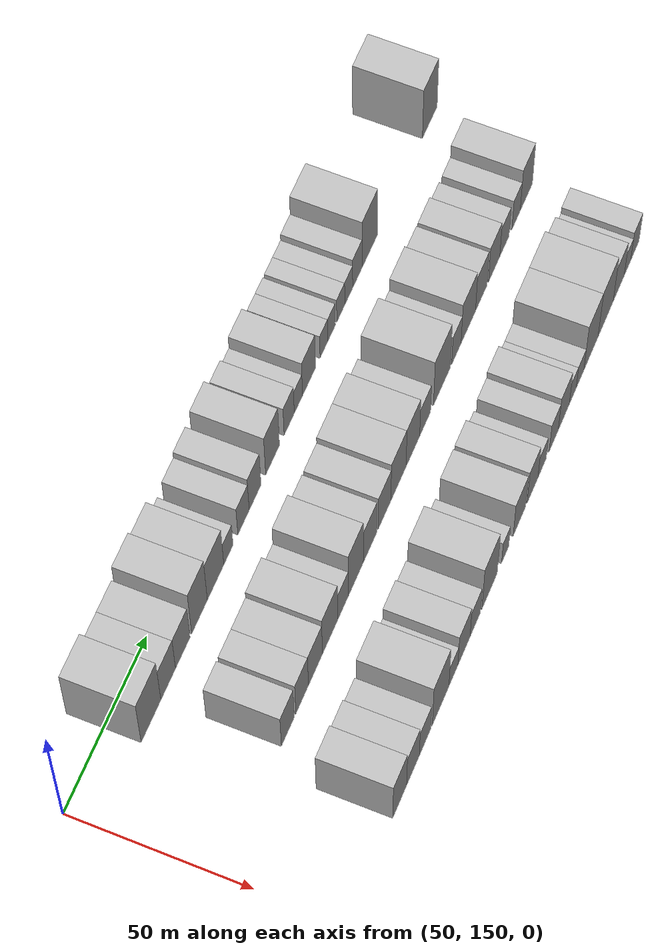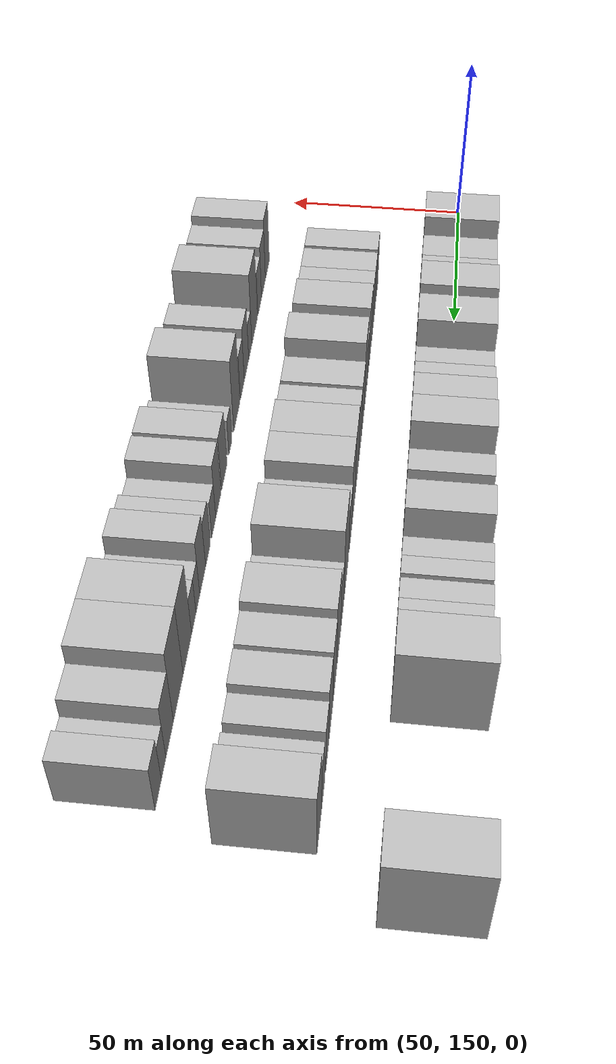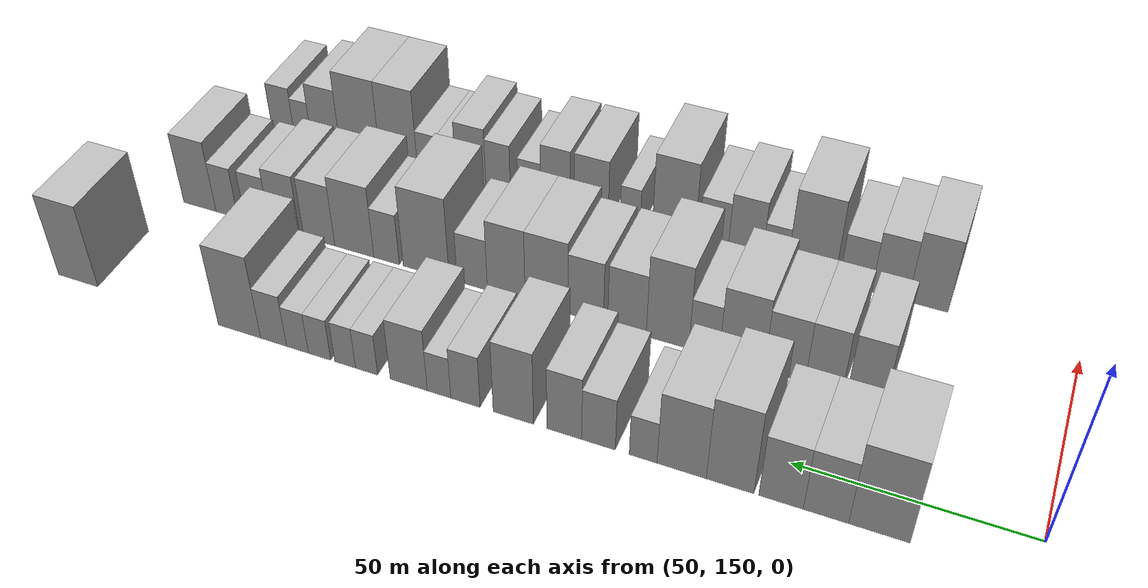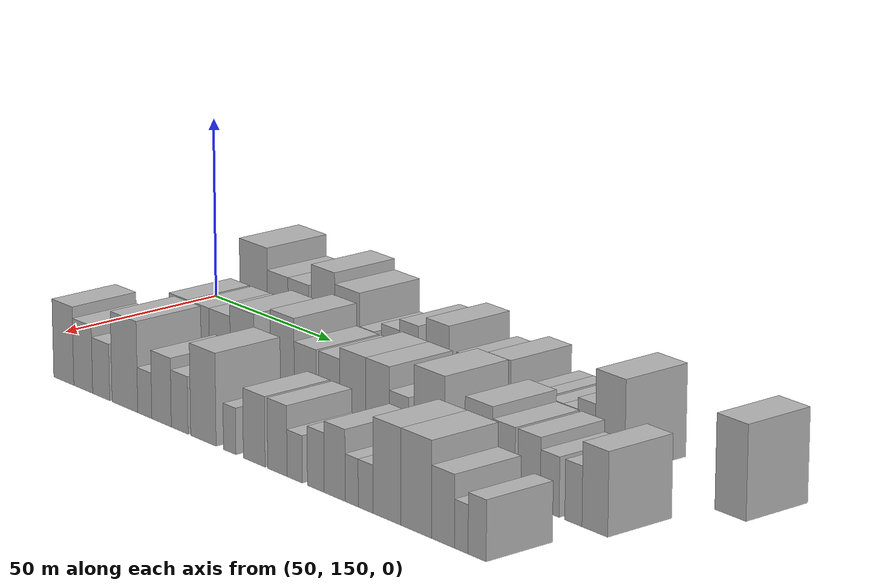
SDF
<sdf version="1.6">
 <world name="default">
  <model name="building_58">
   <static>1</static>
   <pose>50.0000 179.8685 0 0.000000 0.000000 0.000000</pose>
   <link name="link">
    <pose>0 0 12.00 0 0 0</pose>
    <collision name="collision"><geometry><box><size>20.0000 11.9621 24.0000</size></box></geometry></collision>
    <visual name="visual">
     <cast_shadows>0</cast_shadows>
     <geometry><box><size>20.0000 11.9621 24.0000</size></box></geometry>
     <material>
      <script>
       <uri>model://HANNAS_wall/materials/scripts</uri>
       <uri>model://HANNAS_wall/materials/textures</uri>
       <name>vrc/HANNAS_wall</name>
      </script>
     </material>
    </visual>
   </link>
  </model>
  <model name="building_59">
   <static>1</static>
   <pose>50.0000 190.3295 0 0.000000 0.000000 0.000000</pose>
   <link name="link">
    <pose>0 0 9.00 0 0 0</pose>
    <collision name="collision"><geometry><box><size>20.0000 8.9600 18.0000</size></box></geometry></collision>
    <visual name="visual">
     <cast_shadows>0</cast_shadows>
     <geometry><box><size>20.0000 8.9600 18.0000</size></box></geometry>
     <material>
      <script>
       <uri>model://HANNAS_wall/materials/scripts</uri>
       <uri>model://HANNAS_wall/materials/textures</uri>
       <name>vrc/HANNAS_wall</name>
      </script>
     </material>
    </visual>
   </link>
  </model>
  <model name="building_60">
   <static>1</static>
   <pose>50.0000 199.2914 0 0.000000 0.000000 0.000000</pose>
   <link name="link">
    <pose>0 0 9.00 0 0 0</pose>
    <collision name="collision"><geometry><box><size>20.0000 8.9637 18.0000</size></box></geometry></collision>
    <visual name="visual">
     <cast_shadows>0</cast_shadows>
     <geometry><box><size>20.0000 8.9637 18.0000</size></box></geometry>
     <material>
      <script>
       <uri>model://HANNAS_wall/materials/scripts</uri>
       <uri>model://HANNAS_wall/materials/textures</uri>
       <name>vrc/HANNAS_wall</name>
      </script>
     </material>
    </visual>
   </link>
  </model>
  <model name="building_61">
   <static>1</static>
   <pose>50.0000 209.6591 0 0.000000 0.000000 0.000000</pose>
   <link name="link">
    <pose>0 0 12.00 0 0 0</pose>
    <collision name="collision"><geometry><box><size>20.0000 9.7716 24.0000</size></box></geometry></collision>
    <visual name="visual">
     <cast_shadows>0</cast_shadows>
     <geometry><box><size>20.0000 9.7716 24.0000</size></box></geometry>
     <material>
      <script>
       <uri>model://HANNAS_wall/materials/scripts</uri>
       <uri>model://HANNAS_wall/materials/textures</uri>
       <name>vrc/HANNAS_wall</name>
      </script>
     </material>
    </visual>
   </link>
  </model>
  <model name="building_62">
   <static>1</static>
   <pose>50.0000 219.7192 0 0.000000 0.000000 0.000000</pose>
   <link name="link">
    <pose>0 0 10.50 0 0 0</pose>
    <collision name="collision"><geometry><box><size>20.0000 10.3487 21.0000</size></box></geometry></collision>
    <visual name="visual">
     <cast_shadows>0</cast_shadows>
     <geometry><box><size>20.0000 10.3487 21.0000</size></box></geometry>
     <material>
      <script>
       <uri>model://HANNAS_wall/materials/scripts</uri>
       <uri>model://HANNAS_wall/materials/textures</uri>
       <name>vrc/HANNAS_wall</name>
      </script>
     </material>
    </visual>
   </link>
  </model>
  <model name="building_63">
   <static>1</static>
   <pose>50.0000 227.8429 0 0.000000 0.000000 0.000000</pose>
   <link name="link">
    <pose>0 0 6.00 0 0 0</pose>
    <collision name="collision"><geometry><box><size>20.0000 5.8988 12.0000</size></box></geometry></collision>
    <visual name="visual">
     <cast_shadows>0</cast_shadows>
     <geometry><box><size>20.0000 5.8988 12.0000</size></box></geometry>
     <material>
      <script>
       <uri>model://HANNAS_wall/materials/scripts</uri>
       <uri>model://HANNAS_wall/materials/textures</uri>
       <name>vrc/HANNAS_wall</name>
      </script>
     </material>
    </visual>
   </link>
  </model>
  <model name="building_64">
   <static>1</static>
   <pose>50.0000 237.4357 0 0.000000 0.000000 0.000000</pose>
   <link name="link">
    <pose>0 0 7.50 0 0 0</pose>
    <collision name="collision"><geometry><box><size>20.0000 7.2868 15.0000</size></box></geometry></collision>
    <visual name="visual">
     <cast_shadows>0</cast_shadows>
     <geometry><box><size>20.0000 7.2868 15.0000</size></box></geometry>
     <material>
      <script>
       <uri>model://HANNAS_wall/materials/scripts</uri>
       <uri>model://HANNAS_wall/materials/textures</uri>
       <name>vrc/HANNAS_wall</name>
      </script>
     </material>
    </visual>
   </link>
  </model>
  <model name="building_65">
   <static>1</static>
   <pose>50.0000 244.8935 0 0.000000 0.000000 0.000000</pose>
   <link name="link">
    <pose>0 0 9.00 0 0 0</pose>
    <collision name="collision"><geometry><box><size>20.0000 7.6288 18.0000</size></box></geometry></collision>
    <visual name="visual">
     <cast_shadows>0</cast_shadows>
     <geometry><box><size>20.0000 7.6288 18.0000</size></box></geometry>
     <material>
      <script>
       <uri>model://HANNAS_wall/materials/scripts</uri>
       <uri>model://HANNAS_wall/materials/textures</uri>
       <name>vrc/HANNAS_wall</name>
      </script>
     </material>
    </visual>
   </link>
  </model>
  <model name="building_66">
   <static>1</static>
   <pose>50.0000 256.2161 0 0.000000 0.000000 0.000000</pose>
   <link name="link">
    <pose>0 0 10.50 0 0 0</pose>
    <collision name="collision"><geometry><box><size>20.0000 9.0163 21.0000</size></box></geometry></collision>
    <visual name="visual">
     <cast_shadows>0</cast_shadows>
     <geometry><box><size>20.0000 9.0163 21.0000</size></box></geometry>
     <material>
      <script>
       <uri>model://HANNAS_wall/materials/scripts</uri>
       <uri>model://HANNAS_wall/materials/textures</uri>
       <name>vrc/HANNAS_wall</name>
      </script>
     </material>
    </visual>
   </link>
  </model>
  <model name="building_67">
   <static>1</static>
   <pose>50.0000 267.0720 0 0.000000 0.000000 0.000000</pose>
   <link name="link">
    <pose>0 0 7.50 0 0 0</pose>
    <collision name="collision"><geometry><box><size>20.0000 6.6955 15.0000</size></box></geometry></collision>
    <visual name="visual">
     <cast_shadows>0</cast_shadows>
     <geometry><box><size>20.0000 6.6955 15.0000</size></box></geometry>
     <material>
      <script>
       <uri>model://HANNAS_wall/materials/scripts</uri>
       <uri>model://HANNAS_wall/materials/textures</uri>
       <name>vrc/HANNAS_wall</name>
      </script>
     </material>
    </visual>
   </link>
  </model>
  <model name="building_68">
   <static>1</static>
   <pose>50.0000 273.1495 0 0.000000 0.000000 0.000000</pose>
   <link name="link">
    <pose>0 0 6.00 0 0 0</pose>
    <collision name="collision"><geometry><box><size>20.0000 5.4594 12.0000</size></box></geometry></collision>
    <visual name="visual">
     <cast_shadows>0</cast_shadows>
     <geometry><box><size>20.0000 5.4594 12.0000</size></box></geometry>
     <material>
      <script>
       <uri>model://HANNAS_wall/materials/scripts</uri>
       <uri>model://HANNAS_wall/materials/textures</uri>
       <name>vrc/HANNAS_wall</name>
      </script>
     </material>
    </visual>
   </link>
  </model>
  <model name="building_69">
   <static>1</static>
   <pose>50.0000 280.2199 0 0.000000 0.000000 0.000000</pose>
   <link name="link">
    <pose>0 0 9.00 0 0 0</pose>
    <collision name="collision"><geometry><box><size>20.0000 8.6815 18.0000</size></box></geometry></collision>
    <visual name="visual">
     <cast_shadows>0</cast_shadows>
     <geometry><box><size>20.0000 8.6815 18.0000</size></box></geometry>
     <material>
      <script>
       <uri>model://HANNAS_wall/materials/scripts</uri>
       <uri>model://HANNAS_wall/materials/textures</uri>
       <name>vrc/HANNAS_wall</name>
      </script>
     </material>
    </visual>
   </link>
  </model>
  <model name="building_70">
   <static>1</static>
   <pose>50.0000 290.2087 0 0.000000 0.000000 0.000000</pose>
   <link name="link">
    <pose>0 0 6.00 0 0 0</pose>
    <collision name="collision"><geometry><box><size>20.0000 5.2961 12.0000</size></box></geometry></collision>
    <visual name="visual">
     <cast_shadows>0</cast_shadows>
     <geometry><box><size>20.0000 5.2961 12.0000</size></box></geometry>
     <material>
      <script>
       <uri>model://HANNAS_wall/materials/scripts</uri>
       <uri>model://HANNAS_wall/materials/textures</uri>
       <name>vrc/HANNAS_wall</name>
      </script>
     </material>
    </visual>
   </link>
  </model>
  <model name="building_71">
   <static>1</static>
   <pose>50.0000 295.3482 0 0.000000 0.000000 0.000000</pose>
   <link name="link">
    <pose>0 0 6.00 0 0 0</pose>
    <collision name="collision"><geometry><box><size>20.0000 4.9829 12.0000</size></box></geometry></collision>
    <visual name="visual">
     <cast_shadows>0</cast_shadows>
     <geometry><box><size>20.0000 4.9829 12.0000</size></box></geometry>
     <material>
      <script>
       <uri>model://HANNAS_wall/materials/scripts</uri>
       <uri>model://HANNAS_wall/materials/textures</uri>
       <name>vrc/HANNAS_wall</name>
      </script>
     </material>
    </visual>
   </link>
  </model>
  <model name="building_72">
   <static>1</static>
   <pose>50.0000 301.5589 0 0.000000 0.000000 0.000000</pose>
   <link name="link">
    <pose>0 0 6.00 0 0 0</pose>
    <collision name="collision"><geometry><box><size>20.0000 5.4385 12.0000</size></box></geometry></collision>
    <visual name="visual">
     <cast_shadows>0</cast_shadows>
     <geometry><box><size>20.0000 5.4385 12.0000</size></box></geometry>
     <material>
      <script>
       <uri>model://HANNAS_wall/materials/scripts</uri>
       <uri>model://HANNAS_wall/materials/textures</uri>
       <name>vrc/HANNAS_wall</name>
      </script>
     </material>
    </visual>
   </link>
  </model>
  <model name="building_73">
   <static>1</static>
   <pose>50.0000 306.9627 0 0.000000 0.000000 0.000000</pose>
   <link name="link">
    <pose>0 0 6.00 0 0 0</pose>
    <collision name="collision"><geometry><box><size>20.0000 5.3692 12.0000</size></box></geometry></collision>
    <visual name="visual">
     <cast_shadows>0</cast_shadows>
     <geometry><box><size>20.0000 5.3692 12.0000</size></box></geometry>
     <material>
      <script>
       <uri>model://HANNAS_wall/materials/scripts</uri>
       <uri>model://HANNAS_wall/materials/textures</uri>
       <name>vrc/HANNAS_wall</name>
      </script>
     </material>
    </visual>
   </link>
  </model>
  <model name="building_74">
   <static>1</static>
   <pose>50.0000 312.8742 0 0.000000 0.000000 0.000000</pose>
   <link name="link">
    <pose>0 0 7.50 0 0 0</pose>
    <collision name="collision"><geometry><box><size>20.0000 6.4538 15.0000</size></box></geometry></collision>
    <visual name="visual">
     <cast_shadows>0</cast_shadows>
     <geometry><box><size>20.0000 6.4538 15.0000</size></box></geometry>
     <material>
      <script>
       <uri>model://HANNAS_wall/materials/scripts</uri>
       <uri>model://HANNAS_wall/materials/textures</uri>
       <name>vrc/HANNAS_wall</name>
      </script>
     </material>
    </visual>
   </link>
  </model>
  <model name="building_75">
   <static>1</static>
   <pose>50.0000 321.4461 0 0.000000 0.000000 0.000000</pose>
   <link name="link">
    <pose>0 0 12.00 0 0 0</pose>
    <collision name="collision"><geometry><box><size>20.0000 10.6899 24.0000</size></box></geometry></collision>
    <visual name="visual">
     <cast_shadows>0</cast_shadows>
     <geometry><box><size>20.0000 10.6899 24.0000</size></box></geometry>
     <material>
      <script>
       <uri>model://HANNAS_wall/materials/scripts</uri>
       <uri>model://HANNAS_wall/materials/textures</uri>
       <name>vrc/HANNAS_wall</name>
      </script>
     </material>
    </visual>
   </link>
  </model>
  <model name="building_76">
   <static>1</static>
   <pose>50.0000 363.7140 0 0.000000 0.000000 0.000000</pose>
   <link name="link">
    <pose>0 0 12.00 0 0 0</pose>
    <collision name="collision"><geometry><box><size>20.0000 10.6154 24.0000</size></box></geometry></collision>
    <visual name="visual">
     <cast_shadows>0</cast_shadows>
     <geometry><box><size>20.0000 10.6154 24.0000</size></box></geometry>
     <material>
      <script>
       <uri>model://HANNAS_wall/materials/scripts</uri>
       <uri>model://HANNAS_wall/materials/textures</uri>
       <name>vrc/HANNAS_wall</name>
      </script>
     </material>
    </visual>
   </link>
  </model>
  <model name="building_136">
   <static>1</static>
   <pose>82.0000 189.9495 0 0.000000 0.000000 0.000000</pose>
   <link name="link">
    <pose>0 0 9.00 0 0 0</pose>
    <collision name="collision"><geometry><box><size>20.0000 8.1042 18.0000</size></box></geometry></collision>
    <visual name="visual">
     <cast_shadows>0</cast_shadows>
     <geometry><box><size>20.0000 8.1042 18.0000</size></box></geometry>
     <material>
      <script>
       <uri>model://HANNAS_wall/materials/scripts</uri>
       <uri>model://HANNAS_wall/materials/textures</uri>
       <name>vrc/HANNAS_wall</name>
      </script>
     </material>
    </visual>
   </link>
  </model>
  <model name="building_137">
   <static>1</static>
   <pose>82.0000 199.0124 0 0.000000 0.000000 0.000000</pose>
   <link name="link">
    <pose>0 0 9.00 0 0 0</pose>
    <collision name="collision"><geometry><box><size>20.0000 8.0217 18.0000</size></box></geometry></collision>
    <visual name="visual">
     <cast_shadows>0</cast_shadows>
     <geometry><box><size>20.0000 8.0217 18.0000</size></box></geometry>
     <material>
      <script>
       <uri>model://HANNAS_wall/materials/scripts</uri>
       <uri>model://HANNAS_wall/materials/textures</uri>
       <name>vrc/HANNAS_wall</name>
      </script>
     </material>
    </visual>
   </link>
  </model>
  <model name="building_138">
   <static>1</static>
   <pose>82.0000 207.5011 0 0.000000 0.000000 0.000000</pose>
   <link name="link">
    <pose>0 0 9.00 0 0 0</pose>
    <collision name="collision"><geometry><box><size>20.0000 8.9556 18.0000</size></box></geometry></collision>
    <visual name="visual">
     <cast_shadows>0</cast_shadows>
     <geometry><box><size>20.0000 8.9556 18.0000</size></box></geometry>
     <material>
      <script>
       <uri>model://HANNAS_wall/materials/scripts</uri>
       <uri>model://HANNAS_wall/materials/textures</uri>
       <name>vrc/HANNAS_wall</name>
      </script>
     </material>
    </visual>
   </link>
  </model>
  <model name="building_139">
   <static>1</static>
   <pose>82.0000 216.9906 0 0.000000 0.000000 0.000000</pose>
   <link name="link">
    <pose>0 0 10.50 0 0 0</pose>
    <collision name="collision"><geometry><box><size>20.0000 10.0235 21.0000</size></box></geometry></collision>
    <visual name="visual">
     <cast_shadows>0</cast_shadows>
     <geometry><box><size>20.0000 10.0235 21.0000</size></box></geometry>
     <material>
      <script>
       <uri>model://HANNAS_wall/materials/scripts</uri>
       <uri>model://HANNAS_wall/materials/textures</uri>
       <name>vrc/HANNAS_wall</name>
      </script>
     </material>
    </visual>
   </link>
  </model>
  <model name="building_140">
   <static>1</static>
   <pose>82.0000 225.4084 0 0.000000 0.000000 0.000000</pose>
   <link name="link">
    <pose>0 0 7.50 0 0 0</pose>
    <collision name="collision"><geometry><box><size>20.0000 6.8121 15.0000</size></box></geometry></collision>
    <visual name="visual">
     <cast_shadows>0</cast_shadows>
     <geometry><box><size>20.0000 6.8121 15.0000</size></box></geometry>
     <material>
      <script>
       <uri>model://HANNAS_wall/materials/scripts</uri>
       <uri>model://HANNAS_wall/materials/textures</uri>
       <name>vrc/HANNAS_wall</name>
      </script>
     </material>
    </visual>
   </link>
  </model>
  <model name="building_141">
   <static>1</static>
   <pose>82.0000 233.7053 0 0.000000 0.000000 0.000000</pose>
   <link name="link">
    <pose>0 0 12.00 0 0 0</pose>
    <collision name="collision"><geometry><box><size>20.0000 9.7816 24.0000</size></box></geometry></collision>
    <visual name="visual">
     <cast_shadows>0</cast_shadows>
     <geometry><box><size>20.0000 9.7816 24.0000</size></box></geometry>
     <material>
      <script>
       <uri>model://HANNAS_wall/materials/scripts</uri>
       <uri>model://HANNAS_wall/materials/textures</uri>
       <name>vrc/HANNAS_wall</name>
      </script>
     </material>
    </visual>
   </link>
  </model>
  <model name="building_142">
   <static>1</static>
   <pose>82.0000 243.0735 0 0.000000 0.000000 0.000000</pose>
   <link name="link">
    <pose>0 0 9.00 0 0 0</pose>
    <collision name="collision"><geometry><box><size>20.0000 8.9549 18.0000</size></box></geometry></collision>
    <visual name="visual">
     <cast_shadows>0</cast_shadows>
     <geometry><box><size>20.0000 8.9549 18.0000</size></box></geometry>
     <material>
      <script>
       <uri>model://HANNAS_wall/materials/scripts</uri>
       <uri>model://HANNAS_wall/materials/textures</uri>
       <name>vrc/HANNAS_wall</name>
      </script>
     </material>
    </visual>
   </link>
  </model>
  <model name="building_143">
   <static>1</static>
   <pose>82.0000 252.7637 0 0.000000 0.000000 0.000000</pose>
   <link name="link">
    <pose>0 0 9.00 0 0 0</pose>
    <collision name="collision"><geometry><box><size>20.0000 8.4254 18.0000</size></box></geometry></collision>
    <visual name="visual">
     <cast_shadows>0</cast_shadows>
     <geometry><box><size>20.0000 8.4254 18.0000</size></box></geometry>
     <material>
      <script>
       <uri>model://HANNAS_wall/materials/scripts</uri>
       <uri>model://HANNAS_wall/materials/textures</uri>
       <name>vrc/HANNAS_wall</name>
      </script>
     </material>
    </visual>
   </link>
  </model>
  <model name="building_144">
   <static>1</static>
   <pose>82.0000 262.0958 0 0.000000 0.000000 0.000000</pose>
   <link name="link">
    <pose>0 0 10.50 0 0 0</pose>
    <collision name="collision"><geometry><box><size>20.0000 10.2388 21.0000</size></box></geometry></collision>
    <visual name="visual">
     <cast_shadows>0</cast_shadows>
     <geometry><box><size>20.0000 10.2388 21.0000</size></box></geometry>
     <material>
      <script>
       <uri>model://HANNAS_wall/materials/scripts</uri>
       <uri>model://HANNAS_wall/materials/textures</uri>
       <name>vrc/HANNAS_wall</name>
      </script>
     </material>
    </visual>
   </link>
  </model>
  <model name="building_145">
   <static>1</static>
   <pose>82.0000 271.8441 0 0.000000 0.000000 0.000000</pose>
   <link name="link">
    <pose>0 0 10.50 0 0 0</pose>
    <collision name="collision"><geometry><box><size>20.0000 9.2577 21.0000</size></box></geometry></collision>
    <visual name="visual">
     <cast_shadows>0</cast_shadows>
     <geometry><box><size>20.0000 9.2577 21.0000</size></box></geometry>
     <material>
      <script>
       <uri>model://HANNAS_wall/materials/scripts</uri>
       <uri>model://HANNAS_wall/materials/textures</uri>
       <name>vrc/HANNAS_wall</name>
      </script>
     </material>
    </visual>
   </link>
  </model>
  <model name="building_146">
   <static>1</static>
   <pose>82.0000 280.2176 0 0.000000 0.000000 0.000000</pose>
   <link name="link">
    <pose>0 0 7.50 0 0 0</pose>
    <collision name="collision"><geometry><box><size>20.0000 7.4893 15.0000</size></box></geometry></collision>
    <visual name="visual">
     <cast_shadows>0</cast_shadows>
     <geometry><box><size>20.0000 7.4893 15.0000</size></box></geometry>
     <material>
      <script>
       <uri>model://HANNAS_wall/materials/scripts</uri>
       <uri>model://HANNAS_wall/materials/textures</uri>
       <name>vrc/HANNAS_wall</name>
      </script>
     </material>
    </visual>
   </link>
  </model>
  <model name="building_147">
   <static>1</static>
   <pose>82.0000 291.7749 0 0.000000 0.000000 0.000000</pose>
   <link name="link">
    <pose>0 0 12.00 0 0 0</pose>
    <collision name="collision"><geometry><box><size>20.0000 11.6252 24.0000</size></box></geometry></collision>
    <visual name="visual">
     <cast_shadows>0</cast_shadows>
     <geometry><box><size>20.0000 11.6252 24.0000</size></box></geometry>
     <material>
      <script>
       <uri>model://HANNAS_wall/materials/scripts</uri>
       <uri>model://HANNAS_wall/materials/textures</uri>
       <name>vrc/HANNAS_wall</name>
      </script>
     </material>
    </visual>
   </link>
  </model>
  <model name="building_148">
   <static>1</static>
   <pose>82.0000 301.8624 0 0.000000 0.000000 0.000000</pose>
   <link name="link">
    <pose>0 0 7.50 0 0 0</pose>
    <collision name="collision"><geometry><box><size>20.0000 6.5497 15.0000</size></box></geometry></collision>
    <visual name="visual">
     <cast_shadows>0</cast_shadows>
     <geometry><box><size>20.0000 6.5497 15.0000</size></box></geometry>
     <material>
      <script>
       <uri>model://HANNAS_wall/materials/scripts</uri>
       <uri>model://HANNAS_wall/materials/textures</uri>
       <name>vrc/HANNAS_wall</name>
      </script>
     </material>
    </visual>
   </link>
  </model>
  <model name="building_149">
   <static>1</static>
   <pose>82.0000 310.2356 0 0.000000 0.000000 0.000000</pose>
   <link name="link">
    <pose>0 0 10.50 0 0 0</pose>
    <collision name="collision"><geometry><box><size>20.0000 10.1968 21.0000</size></box></geometry></collision>
    <visual name="visual">
     <cast_shadows>0</cast_shadows>
     <geometry><box><size>20.0000 10.1968 21.0000</size></box></geometry>
     <material>
      <script>
       <uri>model://HANNAS_wall/materials/scripts</uri>
       <uri>model://HANNAS_wall/materials/textures</uri>
       <name>vrc/HANNAS_wall</name>
      </script>
     </material>
    </visual>
   </link>
  </model>
  <model name="building_150">
   <static>1</static>
   <pose>82.0000 319.4505 0 0.000000 0.000000 0.000000</pose>
   <link name="link">
    <pose>0 0 9.00 0 0 0</pose>
    <collision name="collision"><geometry><box><size>20.0000 8.2329 18.0000</size></box></geometry></collision>
    <visual name="visual">
     <cast_shadows>0</cast_shadows>
     <geometry><box><size>20.0000 8.2329 18.0000</size></box></geometry>
     <material>
      <script>
       <uri>model://HANNAS_wall/materials/scripts</uri>
       <uri>model://HANNAS_wall/materials/textures</uri>
       <name>vrc/HANNAS_wall</name>
      </script>
     </material>
    </visual>
   </link>
  </model>
  <model name="building_151">
   <static>1</static>
   <pose>82.0000 328.6269 0 0.000000 0.000000 0.000000</pose>
   <link name="link">
    <pose>0 0 9.00 0 0 0</pose>
    <collision name="collision"><geometry><box><size>20.0000 8.1199 18.0000</size></box></geometry></collision>
    <visual name="visual">
     <cast_shadows>0</cast_shadows>
     <geometry><box><size>20.0000 8.1199 18.0000</size></box></geometry>
     <material>
      <script>
       <uri>model://HANNAS_wall/materials/scripts</uri>
       <uri>model://HANNAS_wall/materials/textures</uri>
       <name>vrc/HANNAS_wall</name>
      </script>
     </material>
    </visual>
   </link>
  </model>
  <model name="building_152">
   <static>1</static>
   <pose>82.0000 336.0579 0 0.000000 0.000000 0.000000</pose>
   <link name="link">
    <pose>0 0 7.50 0 0 0</pose>
    <collision name="collision"><geometry><box><size>20.0000 6.7422 15.0000</size></box></geometry></collision>
    <visual name="visual">
     <cast_shadows>0</cast_shadows>
     <geometry><box><size>20.0000 6.7422 15.0000</size></box></geometry>
     <material>
      <script>
       <uri>model://HANNAS_wall/materials/scripts</uri>
       <uri>model://HANNAS_wall/materials/textures</uri>
       <name>vrc/HANNAS_wall</name>
      </script>
     </material>
    </visual>
   </link>
  </model>
  <model name="building_153">
   <static>1</static>
   <pose>82.0000 344.4405 0 0.000000 0.000000 0.000000</pose>
   <link name="link">
    <pose>0 0 7.50 0 0 0</pose>
    <collision name="collision"><geometry><box><size>20.0000 6.0230 15.0000</size></box></geometry></collision>
    <visual name="visual">
     <cast_shadows>0</cast_shadows>
     <geometry><box><size>20.0000 6.0230 15.0000</size></box></geometry>
     <material>
      <script>
       <uri>model://HANNAS_wall/materials/scripts</uri>
       <uri>model://HANNAS_wall/materials/textures</uri>
       <name>vrc/HANNAS_wall</name>
      </script>
     </material>
    </visual>
   </link>
  </model>
  <model name="building_154">
   <static>1</static>
   <pose>82.0000 351.9425 0 0.000000 0.000000 0.000000</pose>
   <link name="link">
    <pose>0 0 10.50 0 0 0</pose>
    <collision name="collision"><geometry><box><size>20.0000 8.9811 21.0000</size></box></geometry></collision>
    <visual name="visual">
     <cast_shadows>0</cast_shadows>
     <geometry><box><size>20.0000 8.9811 21.0000</size></box></geometry>
     <material>
      <script>
       <uri>model://HANNAS_wall/materials/scripts</uri>
       <uri>model://HANNAS_wall/materials/textures</uri>
       <name>vrc/HANNAS_wall</name>
      </script>
     </material>
    </visual>
   </link>
  </model>
  <model name="building_214">
   <static>1</static>
   <pose>114.0000 183.4968 0 0.000000 0.000000 0.000000</pose>
   <link name="link">
    <pose>0 0 10.50 0 0 0</pose>
    <collision name="collision"><geometry><box><size>20.0000 8.9172 21.0000</size></box></geometry></collision>
    <visual name="visual">
     <cast_shadows>0</cast_shadows>
     <geometry><box><size>20.0000 8.9172 21.0000</size></box></geometry>
     <material>
      <script>
       <uri>model://HANNAS_wall/materials/scripts</uri>
       <uri>model://HANNAS_wall/materials/textures</uri>
       <name>vrc/HANNAS_wall</name>
      </script>
     </material>
    </visual>
   </link>
  </model>
  <model name="building_215">
   <static>1</static>
   <pose>114.0000 192.1041 0 0.000000 0.000000 0.000000</pose>
   <link name="link">
    <pose>0 0 9.00 0 0 0</pose>
    <collision name="collision"><geometry><box><size>20.0000 8.2974 18.0000</size></box></geometry></collision>
    <visual name="visual">
     <cast_shadows>0</cast_shadows>
     <geometry><box><size>20.0000 8.2974 18.0000</size></box></geometry>
     <material>
      <script>
       <uri>model://HANNAS_wall/materials/scripts</uri>
       <uri>model://HANNAS_wall/materials/textures</uri>
       <name>vrc/HANNAS_wall</name>
      </script>
     </material>
    </visual>
   </link>
  </model>
  <model name="building_216">
   <static>1</static>
   <pose>114.0000 199.9936 0 0.000000 0.000000 0.000000</pose>
   <link name="link">
    <pose>0 0 7.50 0 0 0</pose>
    <collision name="collision"><geometry><box><size>20.0000 7.4818 15.0000</size></box></geometry></collision>
    <visual name="visual">
     <cast_shadows>0</cast_shadows>
     <geometry><box><size>20.0000 7.4818 15.0000</size></box></geometry>
     <material>
      <script>
       <uri>model://HANNAS_wall/materials/scripts</uri>
       <uri>model://HANNAS_wall/materials/textures</uri>
       <name>vrc/HANNAS_wall</name>
      </script>
     </material>
    </visual>
   </link>
  </model>
  <model name="building_217">
   <static>1</static>
   <pose>114.0000 210.2603 0 0.000000 0.000000 0.000000</pose>
   <link name="link">
    <pose>0 0 12.00 0 0 0</pose>
    <collision name="collision"><geometry><box><size>20.0000 11.0515 24.0000</size></box></geometry></collision>
    <visual name="visual">
     <cast_shadows>0</cast_shadows>
     <geometry><box><size>20.0000 11.0515 24.0000</size></box></geometry>
     <material>
      <script>
       <uri>model://HANNAS_wall/materials/scripts</uri>
       <uri>model://HANNAS_wall/materials/textures</uri>
       <name>vrc/HANNAS_wall</name>
      </script>
     </material>
    </visual>
   </link>
  </model>
  <model name="building_218">
   <static>1</static>
   <pose>114.0000 218.7737 0 0.000000 0.000000 0.000000</pose>
   <link name="link">
    <pose>0 0 6.00 0 0 0</pose>
    <collision name="collision"><geometry><box><size>20.0000 5.9752 12.0000</size></box></geometry></collision>
    <visual name="visual">
     <cast_shadows>0</cast_shadows>
     <geometry><box><size>20.0000 5.9752 12.0000</size></box></geometry>
     <material>
      <script>
       <uri>model://HANNAS_wall/materials/scripts</uri>
       <uri>model://HANNAS_wall/materials/textures</uri>
       <name>vrc/HANNAS_wall</name>
      </script>
     </material>
    </visual>
   </link>
  </model>
  <model name="building_219">
   <static>1</static>
   <pose>114.0000 225.8744 0 0.000000 0.000000 0.000000</pose>
   <link name="link">
    <pose>0 0 9.00 0 0 0</pose>
    <collision name="collision"><geometry><box><size>20.0000 8.2264 18.0000</size></box></geometry></collision>
    <visual name="visual">
     <cast_shadows>0</cast_shadows>
     <geometry><box><size>20.0000 8.2264 18.0000</size></box></geometry>
     <material>
      <script>
       <uri>model://HANNAS_wall/materials/scripts</uri>
       <uri>model://HANNAS_wall/materials/textures</uri>
       <name>vrc/HANNAS_wall</name>
      </script>
     </material>
    </visual>
   </link>
  </model>
  <model name="building_220">
   <static>1</static>
   <pose>114.0000 233.5043 0 0.000000 0.000000 0.000000</pose>
   <link name="link">
    <pose>0 0 7.50 0 0 0</pose>
    <collision name="collision"><geometry><box><size>20.0000 7.0333 15.0000</size></box></geometry></collision>
    <visual name="visual">
     <cast_shadows>0</cast_shadows>
     <geometry><box><size>20.0000 7.0333 15.0000</size></box></geometry>
     <material>
      <script>
       <uri>model://HANNAS_wall/materials/scripts</uri>
       <uri>model://HANNAS_wall/materials/textures</uri>
       <name>vrc/HANNAS_wall</name>
      </script>
     </material>
    </visual>
   </link>
  </model>
  <model name="building_221">
   <static>1</static>
   <pose>114.0000 243.2633 0 0.000000 0.000000 0.000000</pose>
   <link name="link">
    <pose>0 0 12.00 0 0 0</pose>
    <collision name="collision"><geometry><box><size>20.0000 10.4848 24.0000</size></box></geometry></collision>
    <visual name="visual">
     <cast_shadows>0</cast_shadows>
     <geometry><box><size>20.0000 10.4848 24.0000</size></box></geometry>
     <material>
      <script>
       <uri>model://HANNAS_wall/materials/scripts</uri>
       <uri>model://HANNAS_wall/materials/textures</uri>
       <name>vrc/HANNAS_wall</name>
      </script>
     </material>
    </visual>
   </link>
  </model>
  <model name="building_222">
   <static>1</static>
   <pose>114.0000 254.0209 0 0.000000 0.000000 0.000000</pose>
   <link name="link">
    <pose>0 0 6.00 0 0 0</pose>
    <collision name="collision"><geometry><box><size>20.0000 5.0304 12.0000</size></box></geometry></collision>
    <visual name="visual">
     <cast_shadows>0</cast_shadows>
     <geometry><box><size>20.0000 5.0304 12.0000</size></box></geometry>
     <material>
      <script>
       <uri>model://HANNAS_wall/materials/scripts</uri>
       <uri>model://HANNAS_wall/materials/textures</uri>
       <name>vrc/HANNAS_wall</name>
      </script>
     </material>
    </visual>
   </link>
  </model>
  <model name="building_223">
   <static>1</static>
   <pose>114.0000 263.8758 0 0.000000 0.000000 0.000000</pose>
   <link name="link">
    <pose>0 0 9.00 0 0 0</pose>
    <collision name="collision"><geometry><box><size>20.0000 8.6793 18.0000</size></box></geometry></collision>
    <visual name="visual">
     <cast_shadows>0</cast_shadows>
     <geometry><box><size>20.0000 8.6793 18.0000</size></box></geometry>
     <material>
      <script>
       <uri>model://HANNAS_wall/materials/scripts</uri>
       <uri>model://HANNAS_wall/materials/textures</uri>
       <name>vrc/HANNAS_wall</name>
      </script>
     </material>
    </visual>
   </link>
  </model>
  <model name="building_224">
   <static>1</static>
   <pose>114.0000 273.0497 0 0.000000 0.000000 0.000000</pose>
   <link name="link">
    <pose>0 0 9.00 0 0 0</pose>
    <collision name="collision"><geometry><box><size>20.0000 7.6686 18.0000</size></box></geometry></collision>
    <visual name="visual">
     <cast_shadows>0</cast_shadows>
     <geometry><box><size>20.0000 7.6686 18.0000</size></box></geometry>
     <material>
      <script>
       <uri>model://HANNAS_wall/materials/scripts</uri>
       <uri>model://HANNAS_wall/materials/textures</uri>
       <name>vrc/HANNAS_wall</name>
      </script>
     </material>
    </visual>
   </link>
  </model>
  <model name="building_225">
   <static>1</static>
   <pose>114.0000 279.8426 0 0.000000 0.000000 0.000000</pose>
   <link name="link">
    <pose>0 0 6.00 0 0 0</pose>
    <collision name="collision"><geometry><box><size>20.0000 5.9171 12.0000</size></box></geometry></collision>
    <visual name="visual">
     <cast_shadows>0</cast_shadows>
     <geometry><box><size>20.0000 5.9171 12.0000</size></box></geometry>
     <material>
      <script>
       <uri>model://HANNAS_wall/materials/scripts</uri>
       <uri>model://HANNAS_wall/materials/textures</uri>
       <name>vrc/HANNAS_wall</name>
      </script>
     </material>
    </visual>
   </link>
  </model>
  <model name="building_226">
   <static>1</static>
   <pose>114.0000 288.0462 0 0.000000 0.000000 0.000000</pose>
   <link name="link">
    <pose>0 0 7.50 0 0 0</pose>
    <collision name="collision"><geometry><box><size>20.0000 6.4901 15.0000</size></box></geometry></collision>
    <visual name="visual">
     <cast_shadows>0</cast_shadows>
     <geometry><box><size>20.0000 6.4901 15.0000</size></box></geometry>
     <material>
      <script>
       <uri>model://HANNAS_wall/materials/scripts</uri>
       <uri>model://HANNAS_wall/materials/textures</uri>
       <name>vrc/HANNAS_wall</name>
      </script>
     </material>
    </visual>
   </link>
  </model>
  <model name="building_227">
   <static>1</static>
   <pose>114.0000 295.2704 0 0.000000 0.000000 0.000000</pose>
   <link name="link">
    <pose>0 0 9.00 0 0 0</pose>
    <collision name="collision"><geometry><box><size>20.0000 7.9583 18.0000</size></box></geometry></collision>
    <visual name="visual">
     <cast_shadows>0</cast_shadows>
     <geometry><box><size>20.0000 7.9583 18.0000</size></box></geometry>
     <material>
      <script>
       <uri>model://HANNAS_wall/materials/scripts</uri>
       <uri>model://HANNAS_wall/materials/textures</uri>
       <name>vrc/HANNAS_wall</name>
      </script>
     </material>
    </visual>
   </link>
  </model>
  <model name="building_228">
   <static>1</static>
   <pose>114.0000 301.7336 0 0.000000 0.000000 0.000000</pose>
   <link name="link">
    <pose>0 0 6.00 0 0 0</pose>
    <collision name="collision"><geometry><box><size>20.0000 4.9682 12.0000</size></box></geometry></collision>
    <visual name="visual">
     <cast_shadows>0</cast_shadows>
     <geometry><box><size>20.0000 4.9682 12.0000</size></box></geometry>
     <material>
      <script>
       <uri>model://HANNAS_wall/materials/scripts</uri>
       <uri>model://HANNAS_wall/materials/textures</uri>
       <name>vrc/HANNAS_wall</name>
      </script>
     </material>
    </visual>
   </link>
  </model>
  <model name="building_229">
   <static>1</static>
   <pose>114.0000 306.9988 0 0.000000 0.000000 0.000000</pose>
   <link name="link">
    <pose>0 0 6.00 0 0 0</pose>
    <collision name="collision"><geometry><box><size>20.0000 5.5621 12.0000</size></box></geometry></collision>
    <visual name="visual">
     <cast_shadows>0</cast_shadows>
     <geometry><box><size>20.0000 5.5621 12.0000</size></box></geometry>
     <material>
      <script>
       <uri>model://HANNAS_wall/materials/scripts</uri>
       <uri>model://HANNAS_wall/materials/textures</uri>
       <name>vrc/HANNAS_wall</name>
      </script>
     </material>
    </visual>
   </link>
  </model>
  <model name="building_230">
   <static>1</static>
   <pose>114.0000 314.9546 0 0.000000 0.000000 0.000000</pose>
   <link name="link">
    <pose>0 0 12.00 0 0 0</pose>
    <collision name="collision"><geometry><box><size>20.0000 10.3496 24.0000</size></box></geometry></collision>
    <visual name="visual">
     <cast_shadows>0</cast_shadows>
     <geometry><box><size>20.0000 10.3496 24.0000</size></box></geometry>
     <material>
      <script>
       <uri>model://HANNAS_wall/materials/scripts</uri>
       <uri>model://HANNAS_wall/materials/textures</uri>
       <name>vrc/HANNAS_wall</name>
      </script>
     </material>
    </visual>
   </link>
  </model>
  <model name="building_231">
   <static>1</static>
   <pose>114.0000 325.7316 0 0.000000 0.000000 0.000000</pose>
   <link name="link">
    <pose>0 0 12.00 0 0 0</pose>
    <collision name="collision"><geometry><box><size>20.0000 11.2045 24.0000</size></box></geometry></collision>
    <visual name="visual">
     <cast_shadows>0</cast_shadows>
     <geometry><box><size>20.0000 11.2045 24.0000</size></box></geometry>
     <material>
      <script>
       <uri>model://HANNAS_wall/materials/scripts</uri>
       <uri>model://HANNAS_wall/materials/textures</uri>
       <name>vrc/HANNAS_wall</name>
      </script>
     </material>
    </visual>
   </link>
  </model>
  <model name="building_232">
   <static>1</static>
   <pose>114.0000 335.4250 0 0.000000 0.000000 0.000000</pose>
   <link name="link">
    <pose>0 0 9.00 0 0 0</pose>
    <collision name="collision"><geometry><box><size>20.0000 8.1823 18.0000</size></box></geometry></collision>
    <visual name="visual">
     <cast_shadows>0</cast_shadows>
     <geometry><box><size>20.0000 8.1823 18.0000</size></box></geometry>
     <material>
      <script>
       <uri>model://HANNAS_wall/materials/scripts</uri>
       <uri>model://HANNAS_wall/materials/textures</uri>
       <name>vrc/HANNAS_wall</name>
      </script>
     </material>
    </visual>
   </link>
  </model>
  <model name="building_233">
   <static>1</static>
   <pose>114.0000 341.9520 0 0.000000 0.000000 0.000000</pose>
   <link name="link">
    <pose>0 0 6.00 0 0 0</pose>
    <collision name="collision"><geometry><box><size>20.0000 4.8717 12.0000</size></box></geometry></collision>
    <visual name="visual">
     <cast_shadows>0</cast_shadows>
     <geometry><box><size>20.0000 4.8717 12.0000</size></box></geometry>
     <material>
      <script>
       <uri>model://HANNAS_wall/materials/scripts</uri>
       <uri>model://HANNAS_wall/materials/textures</uri>
       <name>vrc/HANNAS_wall</name>
      </script>
     </material>
    </visual>
   </link>
  </model>
  <model name="building_234">
   <static>1</static>
   <pose>114.0000 347.5921 0 0.000000 0.000000 0.000000</pose>
   <link name="link">
    <pose>0 0 7.50 0 0 0</pose>
    <collision name="collision"><geometry><box><size>20.0000 6.4086 15.0000</size></box></geometry></collision>
    <visual name="visual">
     <cast_shadows>0</cast_shadows>
     <geometry><box><size>20.0000 6.4086 15.0000</size></box></geometry>
     <material>
      <script>
       <uri>model://HANNAS_wall/materials/scripts</uri>
       <uri>model://HANNAS_wall/materials/textures</uri>
       <name>vrc/HANNAS_wall</name>
      </script>
     </material>
    </visual>
   </link>
  </model>
 </world>
</sdf>
